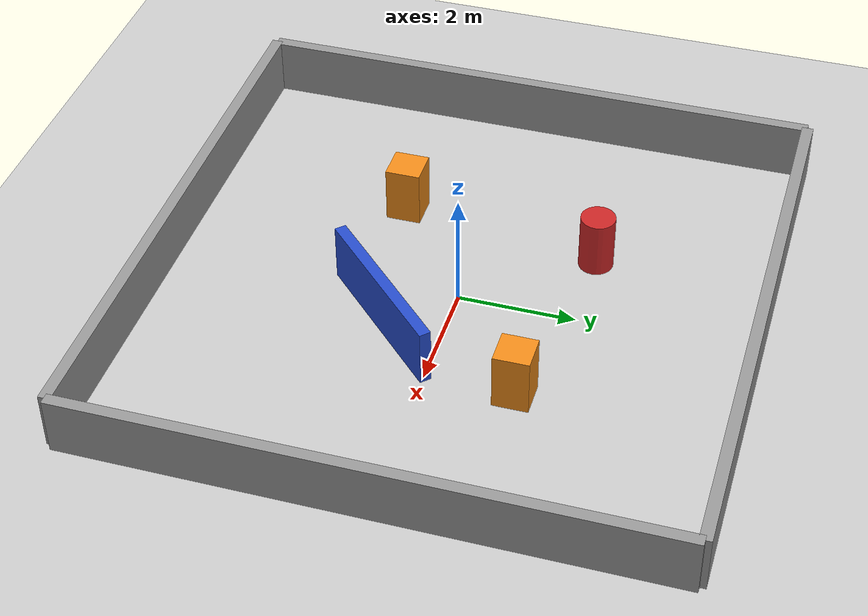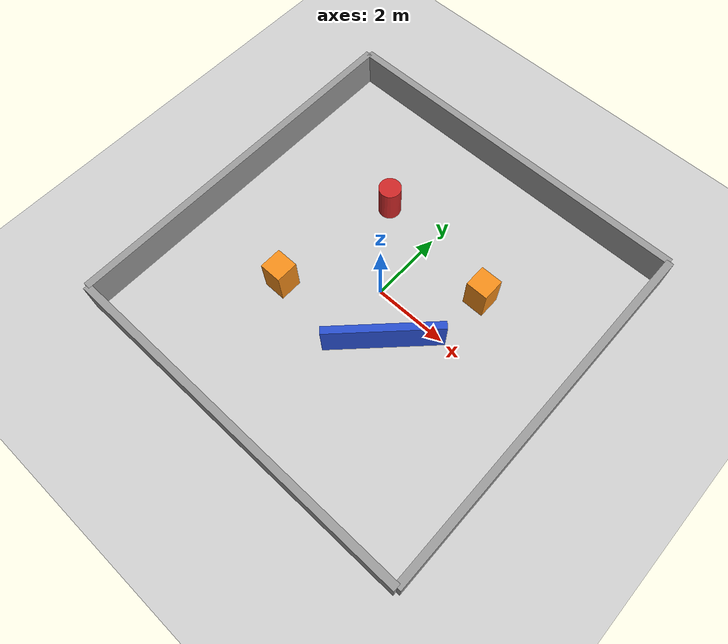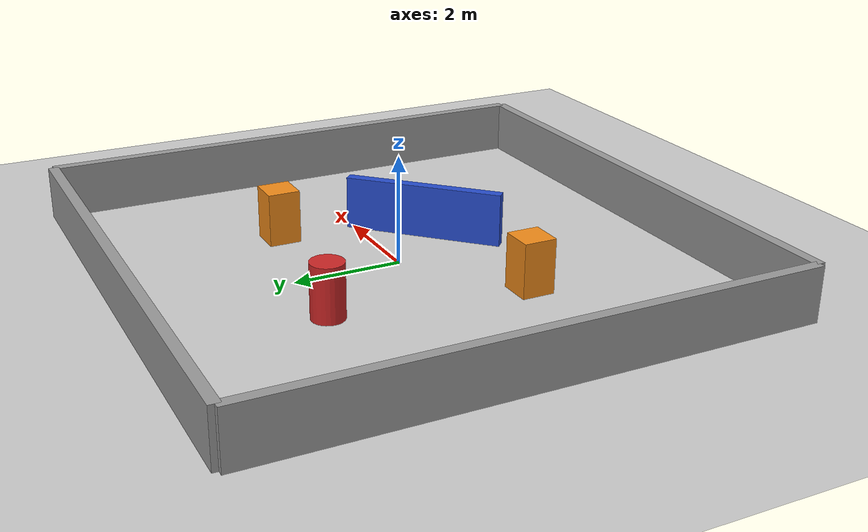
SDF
<?xml version="1.0"?>
<sdf version="1.6">
  <world name="navigation_world">

    <!-- ===== Physics ===== -->
    <physics type="ode">
      <real_time_update_rate>1000.0</real_time_update_rate>
      <max_step_size>0.001</max_step_size>
      <real_time_factor>1</real_time_factor>
    </physics>

    <!-- ===== Plugins ===== -->
    <plugin name="gazebo_ros_state" filename="libgazebo_ros_state.so">
      <ros>
        <namespace>/</namespace>
      </ros>
      <update_rate>1.0</update_rate>
    </plugin>

    <!-- ===== Scene ===== -->
    <scene>
      <ambient>0.4 0.4 0.4 1</ambient>
      <background>0.7 0.7 0.7 1</background>
      <shadows>true</shadows>
    </scene>

    <!-- ===== Sun Light ===== -->
    <light name="sun" type="directional">
      <cast_shadows>true</cast_shadows>
      <pose>0 0 10 0 0 0</pose>
      <diffuse>0.8 0.8 0.8 1</diffuse>
      <specular>0.2 0.2 0.2 1</specular>
      <attenuation>
        <range>1000</range>
        <constant>0.9</constant>
        <linear>0.01</linear>
        <quadratic>0.001</quadratic>
      </attenuation>
      <direction>-0.5 0.1 -0.9</direction>
    </light>

    <!-- ===== Ground Plane ===== -->
    <model name="ground_plane">
      <static>true</static>
      <link name="link">
        <collision name="collision">
          <geometry>
            <plane>
              <normal>0 0 1</normal>
              <size>100 100</size>
            </plane>
          </geometry>
          <surface>
            <friction>
              <ode>
                <mu>100</mu>
                <mu2>50</mu2>
              </ode>
            </friction>
          </surface>
        </collision>
        <visual name="visual">
          <cast_shadows>false</cast_shadows>
          <geometry>
            <plane>
              <normal>0 0 1</normal>
              <size>100 100</size>
            </plane>
          </geometry>
          <material>
            <script>
              <uri>file://media/materials/scripts/gazebo.material</uri>
              <name>Gazebo/Grey</name>
            </script>
          </material>
        </visual>
      </link>
    </model>

    <!-- ===== Outer Walls ===== -->
    <!-- North Wall -->
    <model name="north_wall">
      <static>true</static>
      <pose>0 5 0.5 0 0 0</pose>
      <link name="link">
        <collision name="collision">
          <geometry><box><size>10 0.2 1</size></box></geometry>
        </collision>
        <visual name="visual">
          <geometry><box><size>10 0.2 1</size></box></geometry>
          <material><script><name>Gazebo/Grey</name></script></material>
        </visual>
      </link>
    </model>

    <!-- South Wall -->
    <model name="south_wall">
      <static>true</static>
      <pose>0 -5 0.5 0 0 0</pose>
      <link name="link">
        <collision name="collision">
          <geometry><box><size>10 0.2 1</size></box></geometry>
        </collision>
        <visual name="visual">
          <geometry><box><size>10 0.2 1</size></box></geometry>
          <material><script><name>Gazebo/Grey</name></script></material>
        </visual>
      </link>
    </model>

    <!-- East Wall -->
    <model name="east_wall">
      <static>true</static>
      <pose>5 0 0.5 0 0 0</pose>
      <link name="link">
        <collision name="collision">
          <geometry><box><size>0.2 10 1</size></box></geometry>
        </collision>
        <visual name="visual">
          <geometry><box><size>0.2 10 1</size></box></geometry>
          <material><script><name>Gazebo/Grey</name></script></material>
        </visual>
      </link>
    </model>

    <!-- West Wall -->
    <model name="west_wall">
      <static>true</static>
      <pose>-5 0 0.5 0 0 0</pose>
      <link name="link">
        <collision name="collision">
          <geometry><box><size>0.2 10 1</size></box></geometry>
        </collision>
        <visual name="visual">
          <geometry><box><size>0.2 10 1</size></box></geometry>
          <material><script><name>Gazebo/Grey</name></script></material>
        </visual>
      </link>
    </model>

    <!-- ===== Interior Obstacles ===== -->
    <!-- Box 1 -->
    <model name="box_1">
      <static>true</static>
      <pose>2.0 1.5 0.5 0 0 0</pose>
      <link name="link">
        <collision name="collision">
          <geometry><box><size>0.6 0.6 1</size></box></geometry>
        </collision>
        <visual name="visual">
          <geometry><box><size>0.6 0.6 1</size></box></geometry>
          <material><script><name>Gazebo/Orange</name></script></material>
        </visual>
      </link>
    </model>

    <!-- Box 2 -->
    <model name="box_2">
      <static>true</static>
      <pose>-2.0 -1.5 0.5 0 0 0</pose>
      <link name="link">
        <collision name="collision">
          <geometry><box><size>0.6 0.6 1</size></box></geometry>
        </collision>
        <visual name="visual">
          <geometry><box><size>0.6 0.6 1</size></box></geometry>
          <material><script><name>Gazebo/Orange</name></script></material>
        </visual>
      </link>
    </model>

    <!-- Cylinder obstacle -->
    <model name="cylinder_1">
      <static>true</static>
      <pose>-1.5 2.0 0.5 0 0 0</pose>
      <link name="link">
        <collision name="collision">
          <geometry><cylinder><radius>0.3</radius><length>1</length></cylinder></geometry>
        </collision>
        <visual name="visual">
          <geometry><cylinder><radius>0.3</radius><length>1</length></cylinder></geometry>
          <material><script><name>Gazebo/Red</name></script></material>
        </visual>
      </link>
    </model>

    <!-- Long wall divider -->
    <model name="divider_wall">
      <static>true</static>
      <pose>1.0 -1.0 0.5 0 0 0.785</pose>
      <link name="link">
        <collision name="collision">
          <geometry><box><size>3 0.2 1</size></box></geometry>
        </collision>
        <visual name="visual">
          <geometry><box><size>3 0.2 1</size></box></geometry>
          <material><script><name>Gazebo/Blue</name></script></material>
        </visual>
      </link>
    </model>

  </world>
</sdf>
